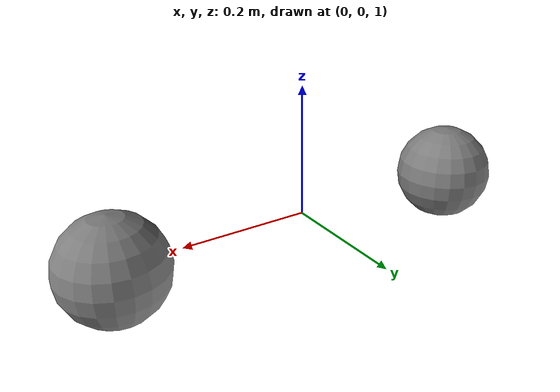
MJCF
<mujoco model="equality_loop">
  <option timestep="0.002"/>
  <worldbody>
    <geom type="plane" size="2 2 .1"/>
    <body name="body1" pos="-.3 0 1"><freejoint/><geom type="sphere" size=".08" mass="1"/></body>
    <body name="body2" pos=".3 0 1"><freejoint/><geom type="sphere" size=".08" mass="1"/></body>
  </worldbody>
  <equality><connect name="distance_link" body1="body1" body2="body2" anchor="0 0 1" solref=".02 1"/></equality>
</mujoco>
